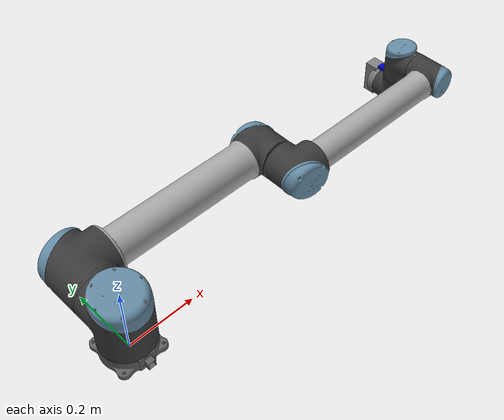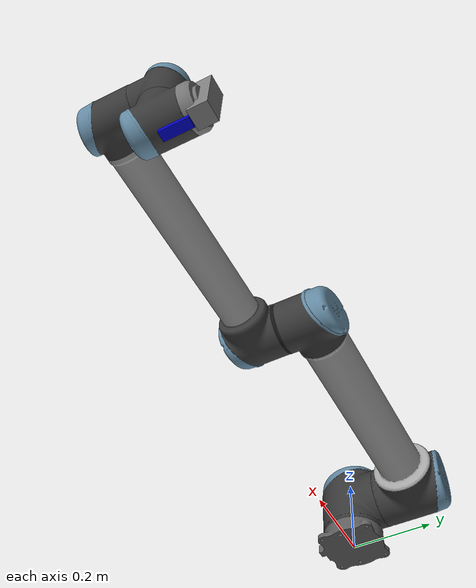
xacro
<?xml version="1.0"?>
<robot xmlns:xacro="http://www.ros.org/wiki/xacro" name="ur10_with_gripper">

  <!-- World Link -->
  <link name="world"/>
  <joint name="world_fixed" type="fixed">
    <parent link="world"/>
    <child link="base_link"/>
    <origin xyz="0 0 0" rpy="0 0 0"/>
  </joint>

  <!-- Base Link -->
  <link name="base_link">
    <visual>
      <geometry><mesh filename="package://ur_description/meshes/ur10/visual/base.dae"/></geometry>
    </visual>
    <collision>
      <geometry><mesh filename="package://ur_description/meshes/ur10/collision/base.stl"/></geometry>
    </collision>
    <inertial><mass value="4.0"/><inertia ixx="0.0061" ixy="0" ixz="0" iyy="0.0061" iyz="0" izz="0.0112"/></inertial>
  </link>

  <!-- Shoulder Link -->
  <link name="shoulder_link">
    <visual>
      <geometry><mesh filename="package://ur_description/meshes/ur10/visual/shoulder.dae"/></geometry>
    </visual>
    <collision>
      <geometry><mesh filename="package://ur_description/meshes/ur10/collision/shoulder.stl"/></geometry>
    </collision>
    <inertial><mass value="7.778"/><inertia ixx="0.0314" ixy="0" ixz="0" iyy="0.0314" iyz="0" izz="0.0218"/></inertial>
  </link>
  <joint name="shoulder_pan_joint" type="revolute">
    <parent link="base_link"/>
    <child link="shoulder_link"/>
    <origin xyz="0 0 0.1273" rpy="0 0 0"/>
    <axis xyz="0 0 1"/>
    <limit lower="-6.283" upper="6.283" effort="330.0" velocity="2.16"/>
  </joint>

  <!-- Upper Arm Link -->
  <link name="upper_arm_link">
    <visual>
      <geometry><mesh filename="package://ur_description/meshes/ur10/visual/upperarm.dae"/></geometry>
    </visual>
    <collision>
      <geometry><mesh filename="package://ur_description/meshes/ur10/collision/upperarm.stl"/></geometry>
    </collision>
    <inertial><mass value="12.93"/><inertia ixx="0.4217" ixy="0" ixz="0" iyy="0.4217" iyz="0" izz="0.0363"/></inertial>
  </link>
  <joint name="shoulder_lift_joint" type="revolute">
    <parent link="shoulder_link"/>
    <child link="upper_arm_link"/>
    <origin xyz="0 0.2209 0" rpy="0 1.5707963 0"/>
    <axis xyz="0 1 0"/>
    <limit lower="-6.283" upper="6.283" effort="330.0" velocity="2.16"/>
  </joint>

  <!-- Forearm Link -->
  <link name="forearm_link">
    <visual>
      <geometry><mesh filename="package://ur_description/meshes/ur10/visual/forearm.dae"/></geometry>
    </visual>
    <collision>
      <geometry><mesh filename="package://ur_description/meshes/ur10/collision/forearm.stl"/></geometry>
    </collision>
    <inertial><mass value="3.87"/><inertia ixx="0.111" ixy="0" ixz="0" iyy="0.111" iyz="0" izz="0.0108"/></inertial>
  </link>
  <joint name="elbow_joint" type="revolute">
    <parent link="upper_arm_link"/>
    <child link="forearm_link"/>
    <origin xyz="0 -0.1719 0.612" rpy="0 0 0"/>
    <axis xyz="0 1 0"/>
    <limit lower="-3.14159" upper="3.14159" effort="150.0" velocity="3.15"/>
  </joint>

  <!-- Wrist 1 Link -->
  <link name="wrist_1_link">
    <visual>
      <geometry><mesh filename="package://ur_description/meshes/ur10/visual/wrist1.dae"/></geometry>
    </visual>
    <collision>
      <geometry><mesh filename="package://ur_description/meshes/ur10/collision/wrist1.stl"/></geometry>
    </collision>
    <inertial><mass value="1.96"/><inertia ixx="0.0051" ixy="0" ixz="0" iyy="0.0051" iyz="0" izz="0.0055"/></inertial>
  </link>
  <joint name="wrist_1_joint" type="revolute">
    <parent link="forearm_link"/>
    <child link="wrist_1_link"/>
    <origin xyz="0 0 0.5723" rpy="0 1.5707963 0"/>
    <axis xyz="0 1 0"/>
    <limit lower="-6.283" upper="6.283" effort="54.0" velocity="3.2"/>
  </joint>

  <!-- Wrist 2 Link -->
  <link name="wrist_2_link">
    <visual>
      <geometry><mesh filename="package://ur_description/meshes/ur10/visual/wrist2.dae"/></geometry>
    </visual>
    <collision>
      <geometry><mesh filename="package://ur_description/meshes/ur10/collision/wrist2.stl"/></geometry>
    </collision>
    <inertial><mass value="1.96"/><inertia ixx="0.0051" ixy="0" ixz="0" iyy="0.0051" iyz="0" izz="0.0055"/></inertial>
  </link>
  <joint name="wrist_2_joint" type="revolute">
    <parent link="wrist_1_link"/>
    <child link="wrist_2_link"/>
    <origin xyz="0 0.1149 0" rpy="0 0 0"/>
    <axis xyz="0 0 1"/>
    <limit lower="-6.283" upper="6.283" effort="54.0" velocity="3.2"/>
  </joint>

  <!-- Wrist 3 Link -->
  <link name="wrist_3_link">
    <visual>
      <geometry><mesh filename="package://ur_description/meshes/ur10/visual/wrist3.dae"/></geometry>
    </visual>
    <collision>
      <geometry><mesh filename="package://ur_description/meshes/ur10/collision/wrist3.stl"/></geometry>
    </collision>
    <inertial><mass value="0.202"/><inertia ixx="0.0001" ixy="0" ixz="0" iyy="0.0001" iyz="0" izz="0.0002"/></inertial>
  </link>
  <joint name="wrist_3_joint" type="revolute">
    <parent link="wrist_2_link"/>
    <child link="wrist_3_link"/>
    <origin xyz="0 0 0.1157" rpy="0 0 0"/>
    <axis xyz="0 1 0"/>
    <limit lower="-6.283" upper="6.283" effort="54.0" velocity="3.2"/>
  </joint>

  <!-- Gripper Integration -->
  <link name="gripper_base">
    <visual><geometry><box size="0.04 0.1 0.04"/></geometry><material name="grey"><color rgba="0.5 0.5 0.5 1"/></material></visual>
    <collision><geometry><box size="0.04 0.1 0.04"/></geometry></collision>
    <inertial><mass value="0.2"/><inertia ixx="0.0001" ixy="0" ixz="0" iyy="0.0001" iyz="0" izz="0.0001"/></inertial>
  </link>
  <joint name="gripper_base_joint" type="fixed">
    <parent link="wrist_3_link"/>
    <child link="gripper_base"/>
    <origin xyz="0 0.092 0" rpy="1.5707963 0 0"/>
  </joint>

  <!-- Left Finger -->
  <link name="left_finger">
    <visual><origin xyz="0 0.02 0.03"/><geometry><box size="0.02 0.01 0.06"/></geometry><material name="blue"><color rgba="0 0 0.8 1"/></material></visual>
    <collision><origin xyz="0 0.02 0.03"/><geometry><box size="0.02 0.01 0.06"/></geometry></collision>
    <inertial><mass value="0.05"/><inertia ixx="0.00001" ixy="0" ixz="0" iyy="0.00001" iyz="0" izz="0.00001"/></inertial>
  </link>
  <joint name="left_finger_joint" type="prismatic">
    <parent link="gripper_base"/>
    <child link="left_finger"/>
    <origin xyz="0 0.03 0.02"/>
    <axis xyz="0 1 0"/>
    <limit lower="0.0" upper="0.04" effort="20.0" velocity="0.2"/>
  </joint>

  <!-- Right Finger -->
  <link name="right_finger">
    <visual><origin xyz="0 -0.02 0.03"/><geometry><box size="0.02 0.01 0.06"/></geometry><material name="blue"><color rgba="0 0 0.8 1"/></material></visual>
    <collision><origin xyz="0 -0.02 0.03"/><geometry><box size="0.02 0.01 0.06"/></geometry></collision>
    <inertial><mass value="0.05"/><inertia ixx="0.00001" ixy="0" ixz="0" iyy="0.00001" iyz="0" izz="0.00001"/></inertial>
  </link>
  <joint name="right_finger_joint" type="prismatic">
    <parent link="gripper_base"/>
    <child link="right_finger"/>
    <origin xyz="0 -0.03 0.02"/>
    <axis xyz="0 -1 0"/>
    <limit lower="0.0" upper="0.04" effort="20.0" velocity="0.2"/>
  </joint>

<!-- ROS 2 Control for Gazebo -->
  <ros2_control name="IgnitionSystem" type="system">
    <hardware>
      <plugin>ign_ros2_control/IgnitionSystem</plugin>
    </hardware>
    <!-- Arm Joints -->
    <joint name="shoulder_pan_joint">
      <command_interface name="position"/>
      <state_interface name="position"/>
      <state_interface name="velocity"/>
    </joint>
    <joint name="shoulder_lift_joint">
      <command_interface name="position"/>
      <state_interface name="position"/>
      <state_interface name="velocity"/>
    </joint>
    <joint name="elbow_joint">
      <command_interface name="position"/>
      <state_interface name="position"/>
      <state_interface name="velocity"/>
    </joint>
    <joint name="wrist_1_joint">
      <command_interface name="position"/>
      <state_interface name="position"/>
      <state_interface name="velocity"/>
    </joint>
    <joint name="wrist_2_joint">
      <command_interface name="position"/>
      <state_interface name="position"/>
      <state_interface name="velocity"/>
    </joint>
    <joint name="wrist_3_joint">
      <command_interface name="position"/>
      <state_interface name="position"/>
      <state_interface name="velocity"/>
    </joint>

    <!-- Gripper Joints -->
    <joint name="left_finger_joint">
      <command_interface name="position"/>
      <state_interface name="position"/>
      <state_interface name="velocity"/>
    </joint>
    <joint name="right_finger_joint">
      <command_interface name="position"/>
      <state_interface name="position"/>
      <state_interface name="velocity"/>
    </joint>
  </ros2_control>

  <gazebo>
    <plugin filename="ign_ros2_control-system" name="ign_ros2_control::IgnitionROS2ControlPlugin">
      <parameters>$(find robot_moveit_config)/config/ros2_controllers.yaml</parameters>
    </plugin>
  </gazebo>

</robot>
